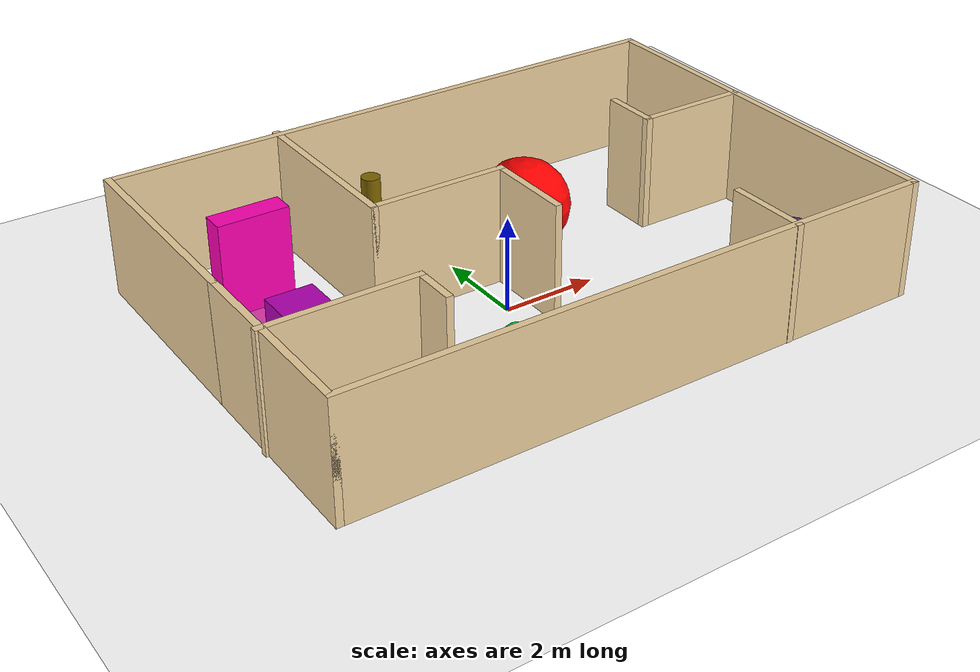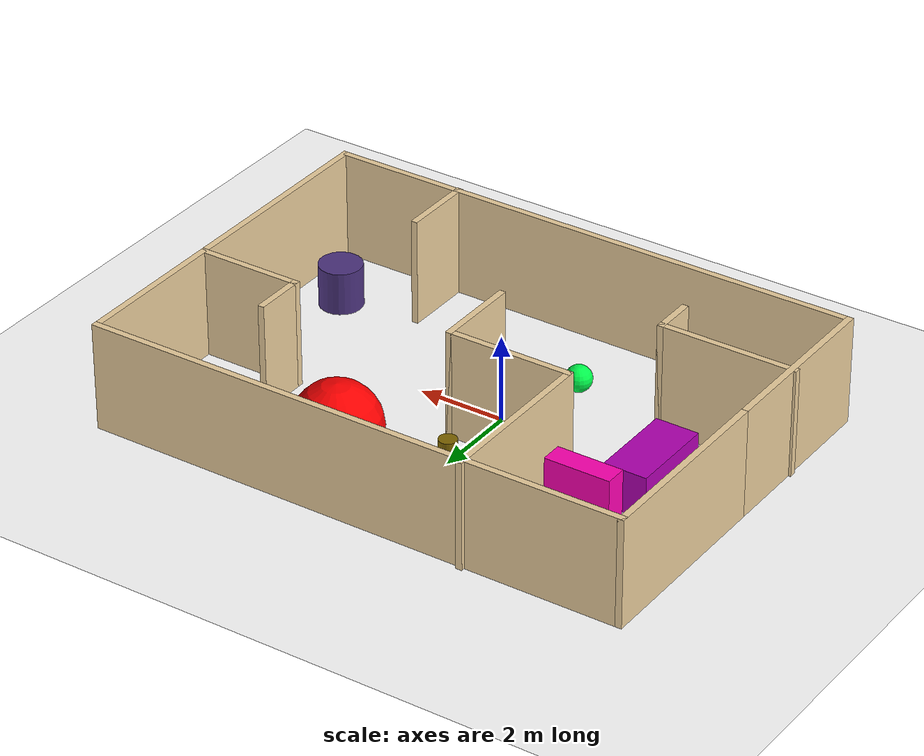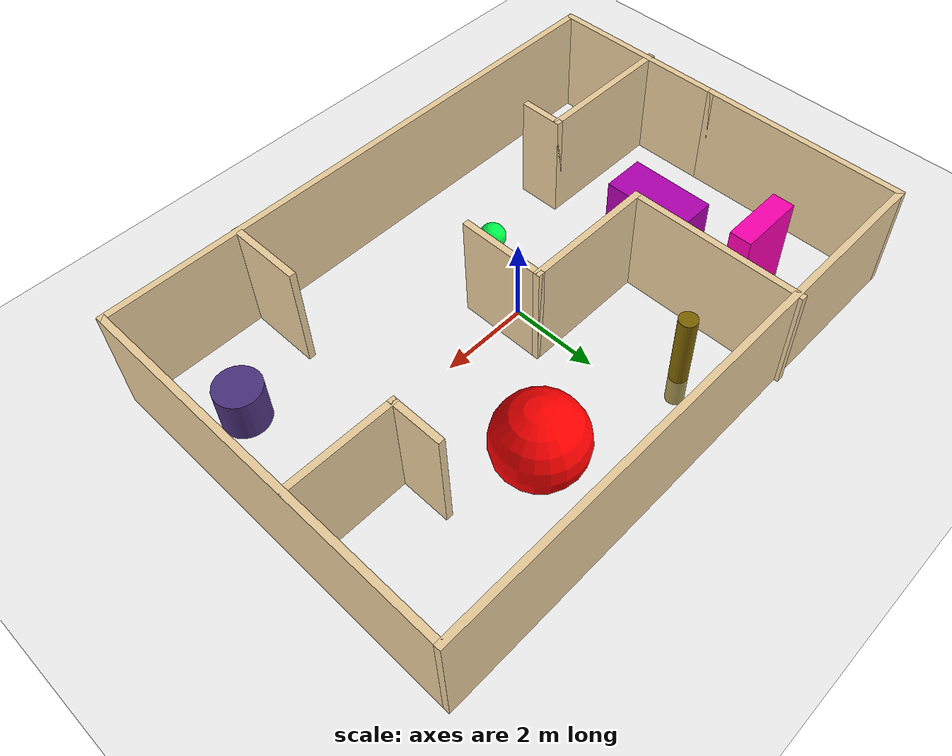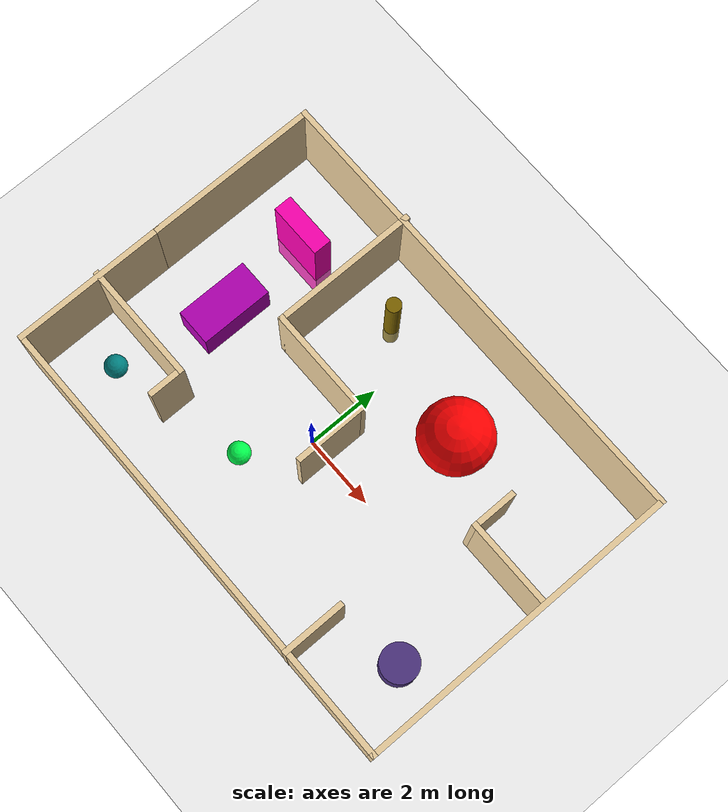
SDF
<sdf version="1.7">
 <world name="default">
  <light name="sun" type="directional">
   <pose>0 0 10 0 -0 0</pose>
   <diffuse>0.8 0.8 0.8 1</diffuse>
   <specular>0.2 0.2 0.2 1</specular>
   <attenuation>
    <range>1000</range>
    <constant>0.9</constant>
    <linear>0.01</linear>
    <quadratic>0.001</quadratic>
   </attenuation>
   <direction>-0.5 0.1 -0.9</direction>
   <spot><inner_angle>0</inner_angle><outer_angle>0</outer_angle><falloff>0</falloff></spot>
  </light>
  <model name="ground_plane">
   <static>1</static>
   <link name="link">
    <collision name="collision">
     <geometry><plane><normal>0 0 1</normal><size>100 100</size></plane></geometry>
     <surface><friction><ode><mu>100</mu><mu2>50</mu2></ode></friction></surface>
    </collision>
    <visual name="visual">
     <cast_shadows>0</cast_shadows>
     <geometry><plane><normal>0 0 1</normal><size>100 100</size></plane></geometry>
     <material>
      <script><uri>file://media/materials/scripts/gazebo.material</uri><name>Gazebo/Grey</name></script>
     </material>
    </visual>
   </link>
  </model>
  <gravity>0 0 -9.8</gravity>
  <magnetic_field>6e-06 2.3e-05 -4.2e-05</magnetic_field>
  <atmosphere type="adiabatic"/>
  <physics type="ode">
   <max_step_size>0.001</max_step_size>
   <real_time_factor>1</real_time_factor>
   <real_time_update_rate>1000</real_time_update_rate>
  </physics>
  <scene><ambient>0.4 0.4 0.4 1</ambient><background>0.7 0.7 0.7 1</background><shadows>1</shadows></scene>
  <spherical_coordinates>
   <surface_model>EARTH_WGS84</surface_model>
   <latitude_deg>0</latitude_deg>
   <longitude_deg>0</longitude_deg>
   <elevation>0</elevation>
   <heading_deg>0</heading_deg>
  </spherical_coordinates>
  <model name="map1_level1">
   <pose>0.360274 0.507327 0 0 -0 0</pose>
   <link name="Wall_1">
    <collision name="Wall_1_Collision">
     <geometry><box><size>4.25 0.15 2.5</size></box></geometry>
     <pose>0 0 1.25 0 -0 0</pose>
    </collision>
    <visual name="Wall_1_Visual">
     <pose>0 0 1.25 0 -0 0</pose>
     <geometry><box><size>4.25 0.15 2.5</size></box></geometry>
     <material>
      <script><uri>file://media/materials/scripts/gazebo.material</uri><name>Gazebo/Grey</name></script>
      <ambient>0.921569 0.807843 0.615686 1</ambient>
     </material>
     <meta><layer>0</layer></meta>
    </visual>
    <pose>-6.27173 -2.33605 0 0 -0 -1.5708</pose>
   </link>
   <link name="Wall_10">
    <collision name="Wall_10_Collision">
     <geometry><box><size>3 0.15 2.5</size></box></geometry>
     <pose>0 0 1.25 0 -0 0</pose>
    </collision>
    <visual name="Wall_10_Visual">
     <pose>0 0 1.25 0 -0 0</pose>
     <geometry><box><size>3 0.15 2.5</size></box></geometry>
     <material>
      <script><uri>file://media/materials/scripts/gazebo.material</uri><name>Gazebo/Grey</name></script>
      <ambient>0.921569 0.807843 0.615686 1</ambient>
     </material>
     <meta><layer>0</layer></meta>
    </visual>
    <pose>-1.22788 0.54651 0 0 -0 0</pose>
   </link>
   <link name="Wall_11">
    <collision name="Wall_11_Collision">
     <geometry><box><size>2 0.15 2.5</size></box></geometry>
     <pose>0 0 1.25 0 -0 0</pose>
    </collision>
    <visual name="Wall_11_Visual">
     <pose>0 0 1.25 0 -0 0</pose>
     <geometry><box><size>2 0.15 2.5</size></box></geometry>
     <material>
      <script><uri>file://media/materials/scripts/gazebo.material</uri><name>Gazebo/Grey</name></script>
      <ambient>0.921569 0.807843 0.615686 1</ambient>
     </material>
     <meta><layer>0</layer></meta>
    </visual>
    <pose>0.197115 -0.37849 0 0 -0 -1.5708</pose>
   </link>
   <link name="Wall_13">
    <collision name="Wall_13_Collision">
     <geometry><box><size>3.25 0.15 2.5</size></box></geometry>
     <pose>0 0 1.25 0 -0 0</pose>
    </collision>
    <visual name="Wall_13_Visual">
     <pose>0 0 1.25 0 -0 0</pose>
     <geometry><box><size>3.25 0.15 2.5</size></box></geometry>
     <material>
      <script><uri>file://media/materials/scripts/gazebo.material</uri><name>Gazebo/Grey</name></script>
      <ambient>0.921569 0.807843 0.615686 1</ambient>
     </material>
     <meta><layer>0</layer></meta>
    </visual>
    <pose>-4.77827 -2.07031 0 0 -0 0</pose>
   </link>
   <link name="Wall_14">
    <collision name="Wall_14_Collision">
     <geometry><box><size>1 0.15 2.5</size></box></geometry>
     <pose>0 0 1.25 0 -0 0</pose>
    </collision>
    <visual name="Wall_14_Visual">
     <pose>0 0 1.25 0 -0 0</pose>
     <geometry><box><size>1 0.15 2.5</size></box></geometry>
     <material>
      <script><uri>file://media/materials/scripts/gazebo.material</uri><name>Gazebo/Grey</name></script>
      <ambient>0.921569 0.807843 0.615686 1</ambient>
     </material>
     <meta><layer>0</layer></meta>
    </visual>
    <pose>-3.22827 -2.49531 0 0 -0 -1.5708</pose>
   </link>
   <link name="Wall_16">
    <collision name="Wall_16_Collision">
     <geometry><box><size>2.5 0.15 2.5</size></box></geometry>
     <pose>0 0 1.25 0 -0 0</pose>
    </collision>
    <visual name="Wall_16_Visual">
     <pose>0 0 1.25 0 -0 0</pose>
     <geometry><box><size>2.5 0.15 2.5</size></box></geometry>
     <material>
      <script><uri>file://media/materials/scripts/gazebo.material</uri><name>Gazebo/Grey</name></script>
      <ambient>0.921569 0.807843 0.615686 1</ambient>
     </material>
     <meta><layer>0</layer></meta>
    </visual>
    <pose>5.15123 0.721121 0 0 -0 3.14159</pose>
   </link>
   <link name="Wall_17">
    <collision name="Wall_17_Collision">
     <geometry><box><size>1.25 0.15 2.5</size></box></geometry>
     <pose>0 0 1.25 0 -0 0</pose>
    </collision>
    <visual name="Wall_17_Visual">
     <pose>0 0 1.25 0 -0 0</pose>
     <geometry><box><size>1.25 0.15 2.5</size></box></geometry>
     <material>
      <script><uri>file://media/materials/scripts/gazebo.material</uri><name>Gazebo/Grey</name></script>
      <ambient>0.921569 0.807843 0.615686 1</ambient>
     </material>
     <meta><layer>0</layer></meta>
    </visual>
    <pose>3.97623 1.27112 0 0 -0 1.5708</pose>
   </link>
   <link name="Wall_19">
    <collision name="Wall_19_Collision">
     <geometry><box><size>1.75 0.15 2.5</size></box></geometry>
     <pose>0 0 1.25 0 -0 0</pose>
    </collision>
    <visual name="Wall_19_Visual">
     <pose>0 0 1.25 0 -0 0</pose>
     <geometry><box><size>1.75 0.15 2.5</size></box></geometry>
     <material>
      <script><uri>file://media/materials/scripts/gazebo.material</uri><name>Gazebo/Grey</name></script>
      <ambient>0.921569 0.807843 0.615686 1</ambient>
     </material>
     <meta><layer>0</layer></meta>
    </visual>
    <pose>3.3487 -3.59651 0 0 -0 1.5708</pose>
   </link>
   <link name="Wall_2">
    <collision name="Wall_2_Collision">
     <geometry><box><size>12.75 0.15 2.5</size></box></geometry>
     <pose>0 0 1.25 0 -0 0</pose>
    </collision>
    <visual name="Wall_2_Visual">
     <pose>0 0 1.25 0 -0 0</pose>
     <geometry><box><size>12.75 0.15 2.5</size></box></geometry>
     <material>
      <script><uri>file://media/materials/scripts/gazebo.material</uri><name>Gazebo/Grey</name></script>
      <ambient>0.921569 0.807843 0.615686 1</ambient>
     </material>
     <meta><layer>0</layer></meta>
    </visual>
    <pose>0.028273 -4.38605 0 0 -0 0</pose>
   </link>
   <link name="Wall_3">
    <collision name="Wall_3_Collision">
     <geometry><box><size>8.75 0.15 2.5</size></box></geometry>
     <pose>0 0 1.25 0 -0 0</pose>
    </collision>
    <visual name="Wall_3_Visual">
     <pose>0 0 1.25 0 -0 0</pose>
     <geometry><box><size>8.75 0.15 2.5</size></box></geometry>
     <material>
      <script><uri>file://media/materials/scripts/gazebo.material</uri><name>Gazebo/Grey</name></script>
      <ambient>0.921569 0.807843 0.615686 1</ambient>
     </material>
     <meta><layer>0</layer></meta>
    </visual>
    <pose>6.32827 -0.086054 0 0 -0 1.5708</pose>
   </link>
   <link name="Wall_6">
    <collision name="Wall_6_Collision">
     <geometry><box><size>4.75 0.15 2.5</size></box></geometry>
     <pose>0 0 1.25 0 -0 0</pose>
    </collision>
    <visual name="Wall_6_Visual">
     <pose>0 0 1.25 0 -0 0</pose>
     <geometry><box><size>4.75 0.15 2.5</size></box></geometry>
     <material>
      <script><uri>file://media/materials/scripts/gazebo.material</uri><name>Gazebo/Grey</name></script>
      <ambient>0.921569 0.807843 0.615686 1</ambient>
     </material>
     <meta><layer>0</layer></meta>
    </visual>
    <pose>-6.27173 2.01395 0 0 -0 1.5708</pose>
   </link>
   <link name="Wall_7">
    <collision name="Wall_7_Collision">
     <geometry><box><size>12.75 0.15 2.5</size></box></geometry>
     <pose>0 0 1.25 0 -0 0</pose>
    </collision>
    <visual name="Wall_7_Visual">
     <pose>0 0 1.25 0 -0 0</pose>
     <geometry><box><size>12.75 0.15 2.5</size></box></geometry>
     <material>
      <script><uri>file://media/materials/scripts/gazebo.material</uri><name>Gazebo/Grey</name></script>
      <ambient>0.921569 0.807843 0.615686 1</ambient>
     </material>
     <meta><layer>0</layer></meta>
    </visual>
    <pose>0.028273 4.31395 0 0 -0 0</pose>
   </link>
   <link name="Wall_9">
    <collision name="Wall_9_Collision">
     <geometry><box><size>4 0.15 2.5</size></box></geometry>
     <pose>0 0 1.25 0 -0 0</pose>
    </collision>
    <visual name="Wall_9_Visual">
     <pose>0 0 1.25 0 -0 0</pose>
     <geometry><box><size>4 0.15 2.5</size></box></geometry>
     <material>
      <script><uri>file://media/materials/scripts/gazebo.material</uri><name>Gazebo/Grey</name></script>
      <ambient>0.921569 0.807843 0.615686 1</ambient>
     </material>
     <meta><layer>0</layer></meta>
    </visual>
    <pose>-2.65288 2.47151 0 0 -0 -1.5708</pose>
   </link>
   <static>1</static>
  </model>
  <model name="pink_box">
   <link name="link">
    <inertial>
     <mass>1</mass>
     <inertia>
      <ixx>0.166667</ixx>
      <ixy>0</ixy>
      <ixz>0</ixz>
      <iyy>0.166667</iyy>
      <iyz>0</iyz>
      <izz>0.166667</izz>
     </inertia>
    </inertial>
    <visual name="visual">
     <geometry><box><size>1.5 0.5 3</size></box></geometry>
     <material>
      <script><name>Gazebo/Grey</name><uri>file://media/materials/scripts/gazebo.material</uri></script>
      <shader type="pixel"><normal_map>__default__</normal_map></shader>
      <ambient>1 0.1 0.8 0.7</ambient>
      <diffuse>1 0 0.7 1</diffuse>
      <specular>0.01 0.11 0.01 1</specular>
      <emissive>0 0 0 1</emissive>
     </material>
    </visual>
    <collision name="collision">
     <geometry><box><size>1.5 0.5 3</size></box></geometry>
     <surface>
      <friction>
       <ode><mu>1</mu><mu2>1</mu2><fdir1>0 0 0</fdir1><slip1>0</slip1><slip2>0</slip2></ode>
       <torsional>
        <coefficient>1</coefficient>
        <patch_radius>0</patch_radius>
        <surface_radius>0</surface_radius>
        <use_patch_radius>1</use_patch_radius>
        <ode><slip>0</slip></ode>
       </torsional>
      </friction>
      <bounce><restitution_coefficient>0</restitution_coefficient><threshold>1e+06</threshold></bounce>
      <contact>
       <collide_without_contact>0</collide_without_contact>
       <collide_without_contact_bitmask>1</collide_without_contact_bitmask>
       <collide_bitmask>1</collide_bitmask>
       <ode>
        <soft_cfm>0</soft_cfm>
        <soft_erp>0.2</soft_erp>
        <kp>1e+13</kp>
        <kd>1</kd>
        <max_vel>0.01</max_vel>
        <min_depth>0</min_depth>
       </ode>
       <bullet>
        <split_impulse>1</split_impulse>
        <split_impulse_penetration_threshold>-0.01</split_impulse_penetration_threshold>
        <soft_cfm>0</soft_cfm>
        <soft_erp>0.2</soft_erp>
        <kp>1e+13</kp>
        <kd>1</kd>
       </bullet>
      </contact>
     </surface>
    </collision>
   </link>
   <static>0</static>
   <pose>-3.90773 3.0298 0.5 0 -0 0</pose>
  </model>
  <model name="purple_box">
   <link name="link">
    <inertial>
     <mass>1</mass>
     <inertia>
      <ixx>0.166667</ixx>
      <ixy>0</ixy>
      <ixz>0</ixz>
      <iyy>0.166667</iyy>
      <iyz>0</iyz>
      <izz>0.166667</izz>
     </inertia>
    </inertial>
    <visual name="visual">
     <geometry><box><size>2 1 1</size></box></geometry>
     <material>
      <script><name>Gazebo/Grey</name><uri>file://media/materials/scripts/gazebo.material</uri></script>
      <shader type="pixel"><normal_map>__default__</normal_map></shader>
      <ambient>0 1 1 1</ambient>
      <diffuse>0.7 0 0.7 1</diffuse>
      <specular>0.01 0.01 0.01 1</specular>
      <emissive>0 0 0 1</emissive>
     </material>
     <pose>0 -0.5 0 0 -0 0</pose>
    </visual>
    <collision name="collision">
     <pose>0 -0.5 0 0 -0 0</pose>
     <geometry><box><size>2 1 1</size></box></geometry>
     <surface>
      <friction>
       <ode><mu>1</mu><mu2>1</mu2><fdir1>0 0 0</fdir1><slip1>0</slip1><slip2>0</slip2></ode>
       <torsional>
        <coefficient>1</coefficient>
        <patch_radius>0</patch_radius>
        <surface_radius>0</surface_radius>
        <use_patch_radius>1</use_patch_radius>
        <ode><slip>0</slip></ode>
       </torsional>
      </friction>
      <bounce><restitution_coefficient>0</restitution_coefficient><threshold>1e+06</threshold></bounce>
      <contact>
       <collide_without_contact>0</collide_without_contact>
       <collide_without_contact_bitmask>1</collide_without_contact_bitmask>
       <collide_bitmask>1</collide_bitmask>
       <ode>
        <soft_cfm>0</soft_cfm>
        <soft_erp>0.2</soft_erp>
        <kp>1e+13</kp>
        <kd>1</kd>
        <max_vel>0.01</max_vel>
        <min_depth>0</min_depth>
       </ode>
       <bullet>
        <split_impulse>1</split_impulse>
        <split_impulse_penetration_threshold>-0.01</split_impulse_penetration_threshold>
        <soft_cfm>0</soft_cfm>
        <soft_erp>0.2</soft_erp>
        <kp>1e+13</kp>
        <kd>1</kd>
       </bullet>
      </contact>
     </surface>
    </collision>
   </link>
   <static>0</static>
   <pose>-3.42276 0.492152 0.499995 0 1e-05 -1.57353</pose>
  </model>
  <model name="red_ball">
   <link name="link">
    <inertial>
     <mass>1</mass>
     <inertia><ixx>0.1</ixx><ixy>0</ixy><ixz>0</ixz><iyy>0.1</iyy><iyz>0</iyz><izz>0.1</izz></inertia>
    </inertial>
    <visual name="visual">
     <geometry><sphere><radius>1</radius></sphere></geometry>
     <material>
      <script><name>Gazebo/Grey</name><uri>file://media/materials/scripts/gazebo.material</uri></script>
      <shader type="pixel"><normal_map>__default__</normal_map></shader>
      <ambient>1 0 0 1</ambient>
      <diffuse>0.7 0.7 0.7 1</diffuse>
      <specular>0.01 0.01 0.01 1</specular>
      <emissive>0 0 0 1</emissive>
     </material>
    </visual>
    <collision name="collision">
     <geometry><sphere><radius>1</radius></sphere></geometry>
     <surface>
      <friction>
       <ode><mu>1</mu><mu2>1</mu2><fdir1>0 0 0</fdir1><slip1>0</slip1><slip2>0</slip2></ode>
       <torsional>
        <coefficient>1</coefficient>
        <patch_radius>0</patch_radius>
        <surface_radius>0</surface_radius>
        <use_patch_radius>1</use_patch_radius>
        <ode><slip>0</slip></ode>
       </torsional>
      </friction>
      <bounce><restitution_coefficient>0</restitution_coefficient><threshold>1e+06</threshold></bounce>
      <contact>
       <collide_without_contact>0</collide_without_contact>
       <collide_without_contact_bitmask>1</collide_without_contact_bitmask>
       <collide_bitmask>1</collide_bitmask>
       <ode>
        <soft_cfm>0</soft_cfm>
        <soft_erp>0.2</soft_erp>
        <kp>1e+13</kp>
        <kd>1</kd>
        <max_vel>0.01</max_vel>
        <min_depth>0</min_depth>
       </ode>
       <bullet>
        <split_impulse>1</split_impulse>
        <split_impulse_penetration_threshold>-0.01</split_impulse_penetration_threshold>
        <soft_cfm>0</soft_cfm>
        <soft_erp>0.2</soft_erp>
        <kp>1e+13</kp>
        <kd>1</kd>
       </bullet>
      </contact>
     </surface>
    </collision>
   </link>
   <static>0</static>
   <pose>2.25389 2.6883 0.5 0 -0 0</pose>
  </model>
  <model name="green_ball">
   <link name="link">
    <inertial>
     <mass>1</mass>
     <inertia><ixx>0.1</ixx><ixy>0</ixy><ixz>0</ixz><iyy>0.1</iyy><iyz>0</iyz><izz>0.1</izz></inertia>
    </inertial>
    <visual name="visual">
     <geometry><sphere><radius>0.3</radius></sphere></geometry>
     <material>
      <script><name>Gazebo/Grey</name><uri>file://media/materials/scripts/gazebo.material</uri></script>
      <shader type="pixel"><normal_map>__default__</normal_map></shader>
      <ambient>0 1 0.3 1</ambient>
      <diffuse>0.7 0.7 0.7 1</diffuse>
      <specular>0.01 0.01 0.01 1</specular>
      <emissive>0 0 0 1</emissive>
     </material>
    </visual>
    <collision name="collision">
     <geometry><sphere><radius>0.3</radius></sphere></geometry>
     <surface>
      <friction>
       <ode><mu>1</mu><mu2>1</mu2><fdir1>0 0 0</fdir1><slip1>0</slip1><slip2>0</slip2></ode>
       <torsional>
        <coefficient>1</coefficient>
        <patch_radius>0</patch_radius>
        <surface_radius>0</surface_radius>
        <use_patch_radius>1</use_patch_radius>
        <ode><slip>0</slip></ode>
       </torsional>
      </friction>
      <bounce><restitution_coefficient>0</restitution_coefficient><threshold>1e+06</threshold></bounce>
      <contact>
       <collide_without_contact>0</collide_without_contact>
       <collide_without_contact_bitmask>1</collide_without_contact_bitmask>
       <collide_bitmask>1</collide_bitmask>
       <ode>
        <soft_cfm>0</soft_cfm>
        <soft_erp>0.2</soft_erp>
        <kp>1e+13</kp>
        <kd>1</kd>
        <max_vel>0.01</max_vel>
        <min_depth>0</min_depth>
       </ode>
       <bullet>
        <split_impulse>1</split_impulse>
        <split_impulse_penetration_threshold>-0.01</split_impulse_penetration_threshold>
        <soft_cfm>0</soft_cfm>
        <soft_erp>0.2</soft_erp>
        <kp>1e+13</kp>
        <kd>1</kd>
       </bullet>
      </contact>
     </surface>
    </collision>
   </link>
   <static>0</static>
   <pose>-0.876166 -1.5972 0.5 0 -0 0</pose>
  </model>
  <model name="orange_primastic">
   <link name="link">
    <inertial>
     <mass>1</mass>
     <inertia><ixx>0.145833</ixx><ixy>0</ixy><ixz>0</ixz><iyy>0.145833</iyy><iyz>0</iyz><izz>0.125</izz></inertia>
    </inertial>
    <visual name="visual">
     <geometry><cylinder><radius>0.2</radius><length>2.5</length></cylinder></geometry>
     <material>
      <script><name>Gazebo/Grey</name><uri>file://media/materials/scripts/gazebo.material</uri></script>
      <shader type="pixel"><normal_map>__default__</normal_map></shader>
      <ambient>0.5 0.4 0 1</ambient>
      <diffuse>0.7 0.7 0.7 1</diffuse>
      <specular>0.01 0.01 0.01 1</specular>
      <emissive>0 0 0 1</emissive>
     </material>
    </visual>
    <collision name="collision">
     <geometry><cylinder><radius>0.2</radius><length>2.5</length></cylinder></geometry>
     <surface>
      <friction>
       <ode><mu>1</mu><mu2>1</mu2><fdir1>0 0 0</fdir1><slip1>0</slip1><slip2>0</slip2></ode>
       <torsional>
        <coefficient>1</coefficient>
        <patch_radius>0</patch_radius>
        <surface_radius>0</surface_radius>
        <use_patch_radius>1</use_patch_radius>
        <ode><slip>0</slip></ode>
       </torsional>
      </friction>
      <bounce><restitution_coefficient>0</restitution_coefficient><threshold>1e+06</threshold></bounce>
      <contact>
       <collide_without_contact>0</collide_without_contact>
       <collide_without_contact_bitmask>1</collide_without_contact_bitmask>
       <collide_bitmask>1</collide_bitmask>
       <ode>
        <soft_cfm>0</soft_cfm>
        <soft_erp>0.2</soft_erp>
        <kp>1e+13</kp>
        <kd>1</kd>
        <max_vel>0.01</max_vel>
        <min_depth>0</min_depth>
       </ode>
       <bullet>
        <split_impulse>1</split_impulse>
        <split_impulse_penetration_threshold>-0.01</split_impulse_penetration_threshold>
        <soft_cfm>0</soft_cfm>
        <soft_erp>0.2</soft_erp>
        <kp>1e+13</kp>
        <kd>1</kd>
       </bullet>
      </contact>
     </surface>
    </collision>
   </link>
   <static>0</static>
   <pose>-0.999998 3.44019 0.499998 3e-06 4e-06 -0</pose>
  </model>
  <model name="green_box_03">
   <link name="link">
    <inertial>
     <mass>1</mass>
     <inertia><ixx>0.1</ixx><ixy>0</ixy><ixz>0</ixz><iyy>0.1</iyy><iyz>0</iyz><izz>0.1</izz></inertia>
    </inertial>
    <visual name="visual">
     <geometry><sphere><radius>0.3</radius></sphere></geometry>
     <material>
      <script><name>Gazebo/Grey</name><uri>file://media/materials/scripts/gazebo.material</uri></script>
      <shader type="pixel"><normal_map>__default__</normal_map></shader>
      <ambient>0 0.5 0.5 1</ambient>
      <diffuse>0.7 0.7 0.7 1</diffuse>
      <specular>0.01 0.01 0.01 1</specular>
      <emissive>0 0 0 1</emissive>
     </material>
    </visual>
    <collision name="collision">
     <geometry><sphere><radius>0.3</radius></sphere></geometry>
     <surface>
      <friction>
       <ode><mu>1</mu><mu2>1</mu2><fdir1>0 0 0</fdir1><slip1>0</slip1><slip2>0</slip2></ode>
       <torsional>
        <coefficient>1</coefficient>
        <patch_radius>0</patch_radius>
        <surface_radius>0</surface_radius>
        <use_patch_radius>1</use_patch_radius>
        <ode><slip>0</slip></ode>
       </torsional>
      </friction>
      <bounce><restitution_coefficient>0</restitution_coefficient><threshold>1e+06</threshold></bounce>
      <contact>
       <collide_without_contact>0</collide_without_contact>
       <collide_without_contact_bitmask>1</collide_without_contact_bitmask>
       <collide_bitmask>1</collide_bitmask>
       <ode>
        <soft_cfm>0</soft_cfm>
        <soft_erp>0.2</soft_erp>
        <kp>1e+13</kp>
        <kd>1</kd>
        <max_vel>0.01</max_vel>
        <min_depth>0</min_depth>
       </ode>
       <bullet>
        <split_impulse>1</split_impulse>
        <split_impulse_penetration_threshold>-0.01</split_impulse_penetration_threshold>
        <soft_cfm>0</soft_cfm>
        <soft_erp>0.2</soft_erp>
        <kp>1e+13</kp>
        <kd>1</kd>
       </bullet>
      </contact>
     </surface>
    </collision>
   </link>
   <static>0</static>
   <pose>-4.53648 -2.50668 0.5 0 -0 0</pose>
  </model>
  <model name="skin_primastic">
   <link name="link">
    <inertial>
     <mass>1</mass>
     <inertia><ixx>0.145833</ixx><ixy>0</ixy><ixz>0</ixz><iyy>0.145833</iyy><iyz>0</iyz><izz>0.125</izz></inertia>
    </inertial>
    <visual name="visual">
     <geometry><cylinder><radius>0.5</radius><length>1</length></cylinder></geometry>
     <material>
      <script><name>Gazebo/Grey</name><uri>file://media/materials/scripts/gazebo.material</uri></script>
      <shader type="pixel"><normal_map>__default__</normal_map></shader>
      <ambient>0.3 0.2 0.5 0</ambient>
      <diffuse>0.7 0.7 0.7 1</diffuse>
      <specular>0.01 0.01 0.01 1</specular>
      <emissive>0 0 0 1</emissive>
     </material>
    </visual>
    <collision name="collision">
     <geometry><cylinder><radius>0.5</radius><length>1</length></cylinder></geometry>
     <surface>
      <friction>
       <ode><mu>1</mu><mu2>1</mu2><fdir1>0 0 0</fdir1><slip1>0</slip1><slip2>0</slip2></ode>
       <torsional>
        <coefficient>1</coefficient>
        <patch_radius>0</patch_radius>
        <surface_radius>0</surface_radius>
        <use_patch_radius>1</use_patch_radius>
        <ode><slip>0</slip></ode>
       </torsional>
      </friction>
      <bounce><restitution_coefficient>0</restitution_coefficient><threshold>1e+06</threshold></bounce>
      <contact>
       <collide_without_contact>0</collide_without_contact>
       <collide_without_contact_bitmask>1</collide_without_contact_bitmask>
       <collide_bitmask>1</collide_bitmask>
       <ode>
        <soft_cfm>0</soft_cfm>
        <soft_erp>0.2</soft_erp>
        <kp>1e+13</kp>
        <kd>1</kd>
        <max_vel>0.01</max_vel>
        <min_depth>0</min_depth>
       </ode>
       <bullet>
        <split_impulse>1</split_impulse>
        <split_impulse_penetration_threshold>-0.01</split_impulse_penetration_threshold>
        <soft_cfm>0</soft_cfm>
        <soft_erp>0.2</soft_erp>
        <kp>1e+13</kp>
        <kd>1</kd>
       </bullet>
      </contact>
     </surface>
    </collision>
   </link>
   <static>0</static>
   <pose>5.50038 -2 0.499993 -3e-06 -3e-06 0</pose>
  </model>
 </world>
</sdf>
